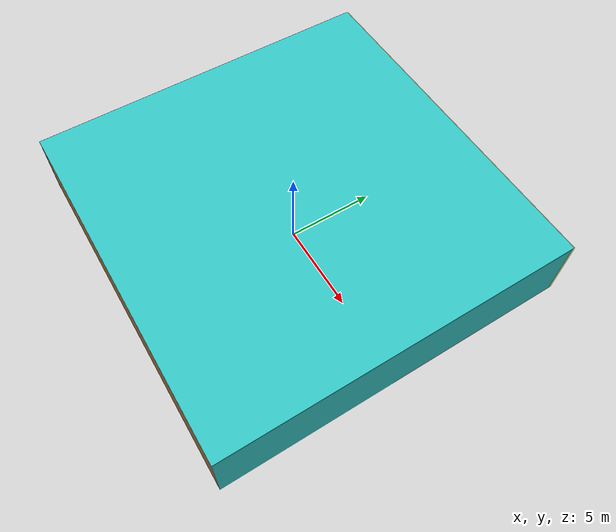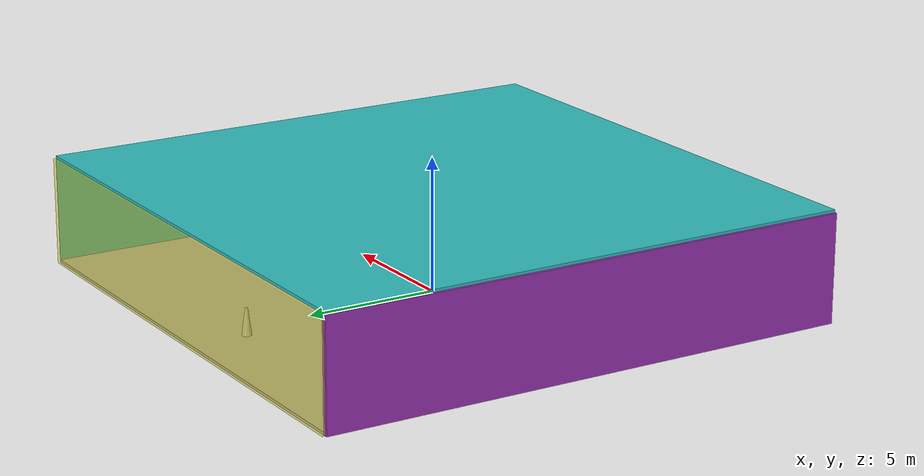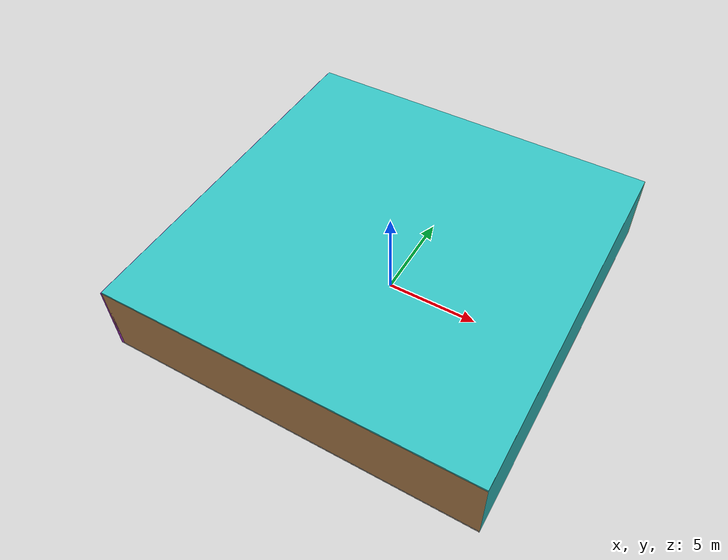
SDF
<sdf version="1.4">
 <world name="default">
  <physics type="ode">
   <max_step_size>0.001</max_step_size>
   <real_time_factor>1</real_time_factor>
   <real_time_update_rate>1000</real_time_update_rate>
   <gravity>0 0 -9.8</gravity>
  </physics>
  <scene><ambient>0.4 0.4 0.4 1</ambient><background>0.7 0.7 0.7 1</background><shadows>1</shadows></scene>
  <model name="Surrounding">
   <static>1</static>
   <link name="Ceiling">
    <collision name="Ceiling_Collision"><geometry><box><size>20 20 0.1</size></box></geometry></collision>
    <visual name="Ceiling_Visual">
     <geometry><box><size>20 20 0.1</size></box></geometry>
     <material>
      <script>
       <uri>file://media/materials/scripts/gazebo.material</uri>
       <name>Gazebo/TurquoiseGlowOutline</name>
      </script>
     </material>
    </visual>
    <pose>0 0 4.05 0 0 0</pose>
   </link>
   <link name="Wall_South">
    <collision name="Wall_South_Collision">
     <geometry><box><size>20 0 4</size></box></geometry>
     <pose>0 0 2 0 -0 0</pose>
    </collision>
    <visual name="Wall_South_Visual">
     <pose>0 0 2 0 -0 0</pose>
     <geometry><box><size>20 0 4</size></box></geometry>
     <material>
      <script><uri>file://media/materials/scripts/gazebo.material</uri><name>Gazebo/WoodFloor</name></script>
     </material>
    </visual>
    <velocity_decay><linear>0</linear><angular>0</angular></velocity_decay>
    <pose>0 -10 0 0 -0 0</pose>
   </link>
   <link name="Wall_East">
    <collision name="Wall_21_Collision">
     <geometry><box><size>20 0 4</size></box></geometry>
     <pose>0 0 2 0 -0 0</pose>
    </collision>
    <visual name="Wall_21_Visual">
     <pose>0 0 2 0 -0 0</pose>
     <geometry><box><size>20 0 4</size></box></geometry>
     <material>
      <script><uri>file://media/materials/scripts/gazebo.material</uri><name>Gazebo/TurquoiseGlow</name></script>
     </material>
    </visual>
    <velocity_decay><linear>0</linear><angular>0</angular></velocity_decay>
    <pose>10 0 0 0 -0 1.5708</pose>
   </link>
   <link name="Wall_North">
    <collision name="Wall_22_Collision">
     <geometry><box><size>20 0.2 4</size></box></geometry>
     <pose>0 0 2 0 -0 0</pose>
    </collision>
    <visual name="Wall_22_Visual">
     <pose>0 0 2 0 -0 0</pose>
     <geometry><box><size>20 0.2 4</size></box></geometry>
     <material>
      <script>
       <uri>file://media/materials/scripts/gazebo.material</uri>
       <name>Gazebo/YellowTransparent</name>
      </script>
     </material>
    </visual>
    <velocity_decay><linear>0</linear><angular>0</angular></velocity_decay>
    <pose>0 10 0 0 -0 0</pose>
   </link>
   <link name="Wall_West">
    <collision name="Wall_23_Collision">
     <geometry><box><size>20 0.2 4</size></box></geometry>
     <pose>0 0 2 0 -0 0</pose>
    </collision>
    <visual name="Wall_23_Visual">
     <pose>0 0 2 0 -0 0</pose>
     <geometry><box><size>20 0.2 4</size></box></geometry>
     <material>
      <script><uri>file://media/materials/scripts/gazebo.material</uri><name>Gazebo/Purple</name></script>
     </material>
    </visual>
    <velocity_decay><linear>0</linear><angular>0</angular></velocity_decay>
    <pose>-10 0 0 0 0 -1.5708</pose>
   </link>
   <link name="Ground_link">
    <collision name="collision">
     <pose>0 0 .05 0 -0 0</pose>
     <geometry><box><size>20 20 0.1</size></box></geometry>
    </collision>
    <visual name="visual">
     <pose>0 0 .05 0 -0 0</pose>
     <geometry><box><size>20 20 0.1</size></box></geometry>
     <material>
      <script><uri>file://media/materials/scripts/gazebo.material</uri><name>Gazebo/PioneerBody</name></script>
     </material>
    </visual>
   </link>
   <static>1</static>
  </model>
  <spherical_coordinates>
   <surface_model>EARTH_WGS84</surface_model>
   <latitude_deg>0</latitude_deg>
   <longitude_deg>0</longitude_deg>
   <elevation>0</elevation>
   <heading_deg>0</heading_deg>
  </spherical_coordinates>
  <light name="lightball_0" type="diffuse">
   <diffuse>0.8 0.8 0.8 1</diffuse>
   <specular>0.2 0.2 0.2 1</specular>
   <attenuation>
    <range>100</range>
    <constant>0.7</constant>
    <linear>0.01</linear>
    <quadratic>0.001</quadratic>
   </attenuation>
   <direction>-0.5 0.1 -0.9</direction>
   <pose>-9.05881492347 -8.18160349464 0.636091749661 0 0 0</pose>
  </light>
  <light name="lightball_1" type="diffuse">
   <diffuse>0.8 0.8 0.8 1</diffuse>
   <specular>0.2 0.2 0.2 1</specular>
   <attenuation>
    <range>100</range>
    <constant>0.7</constant>
    <linear>0.01</linear>
    <quadratic>0.001</quadratic>
   </attenuation>
   <direction>-0.5 0.1 -0.9</direction>
   <pose>-9.91729632341 2.35513297046 3.16585191402 0 0 0</pose>
  </light>
  <light name="lightball_2" type="diffuse">
   <diffuse>0.8 0.8 0.8 1</diffuse>
   <specular>0.2 0.2 0.2 1</specular>
   <attenuation>
    <range>100</range>
    <constant>0.7</constant>
    <linear>0.01</linear>
    <quadratic>0.001</quadratic>
   </attenuation>
   <direction>-0.5 0.1 -0.9</direction>
   <pose>1.52831943602 7.0408765313 1.28652013198 0 0 0</pose>
  </light>
  <light name="lightball_3" type="diffuse">
   <diffuse>0.8 0.8 0.8 1</diffuse>
   <specular>0.2 0.2 0.2 1</specular>
   <attenuation>
    <range>100</range>
    <constant>0.7</constant>
    <linear>0.01</linear>
    <quadratic>0.001</quadratic>
   </attenuation>
   <direction>-0.5 0.1 -0.9</direction>
   <pose>1.14160379332 7.98214940199 1.38363422905 0 0 0</pose>
  </light>
  <light name="lightball_4" type="diffuse">
   <diffuse>0.8 0.8 0.8 1</diffuse>
   <specular>0.2 0.2 0.2 1</specular>
   <attenuation>
    <range>100</range>
    <constant>0.7</constant>
    <linear>0.01</linear>
    <quadratic>0.001</quadratic>
   </attenuation>
   <direction>-0.5 0.1 -0.9</direction>
   <pose>-7.7204958384 -5.8674167461 1.32646378007 0 0 0</pose>
  </light>
  <light name="lightball_5" type="diffuse">
   <diffuse>0.8 0.8 0.8 1</diffuse>
   <specular>0.2 0.2 0.2 1</specular>
   <attenuation>
    <range>100</range>
    <constant>0.7</constant>
    <linear>0.01</linear>
    <quadratic>0.001</quadratic>
   </attenuation>
   <direction>-0.5 0.1 -0.9</direction>
   <pose>-1.23926150592 -8.61687249957 2.90832108305 0 0 0</pose>
  </light>
  <include>
   <uri>model://robocup_3Dsim_goal</uri>
   <pose>-6.78314692062 1.20811371808 0 0 0 0.896346301216</pose>
  </include>
  <include><uri>model://table</uri><pose>-7.858855205 3.377362425 0 0 0 2.77901527011</pose></include>
  <include><uri>model://cabinet</uri><pose>-5.33816189455 -8.43942543365 0 0 0 2.33155941415</pose></include>
  <include>
   <uri>model://construction_cone</uri>
   <pose>-0.839332279083 7.92191866011 0 0 0 0.579961434199</pose>
  </include>
  <include><uri>model://table</uri><pose>8.21476698427 -4.50110490961 0 0 0 2.25707799753</pose></include>
 </world>
</sdf>

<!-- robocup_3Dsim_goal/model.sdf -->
<sdf version="1.5">
  <model name="robocup_3d_goal">
    <static>true</static>
    <link name="left_post">
      <pose>0 1.05 0.45 0 0 0</pose>
      <collision name="collision">
        <geometry>
          <cylinder>
            <radius>0.05</radius>
            <length>0.9</length>
          </cylinder>
        </geometry>
      </collision>
      <visual name="visual">
        <geometry>
          <cylinder>
            <radius>0.05</radius>
            <length>0.9</length>
          </cylinder>
        </geometry>
        <material>
          <script>
            <uri>file://media/materials/scripts/gazebo.material</uri>
            <name>Gazebo/ZincYellow</name>
          </script>
        </material>
      </visual>
    </link>
    <link name="left_support_horiz_lower">
      <pose>0.30 1.05 0.01 0 0 0</pose>
      <collision name="collision">
        <geometry>
          <box>
            <size>0.50 0.02 0.02</size>
          </box>
        </geometry>
      </collision>
      <visual name="visual">
        <geometry>
          <box>
            <size>0.50 0.02 0.02</size>
          </box>
        </geometry>
        <material>
          <script>
            <uri>file://media/materials/scripts/gazebo.material</uri>
            <name>Gazebo/White</name>
          </script>
        </material>
      </visual>
    </link>
    <link name="left_support_horiz_upper">
      <pose>0.30 1.05 0.79 0 0 0</pose>
      <collision name="collision">
        <geometry>
          <box>
            <size>0.50 0.02 0.02</size>
          </box>
        </geometry>
      </collision>
      <visual name="visual">
        <geometry>
          <box>
            <size>0.50 0.02 0.02</size>
          </box>
        </geometry>
        <material>
          <script>
            <uri>file://media/materials/scripts/gazebo.material</uri>
            <name>Gazebo/White</name>
          </script>
        </material>
      </visual>
    </link>
    <link name="left_support_vertical">
      <pose>0.56 1.05 0.4 0 1.5708 0</pose>
      <collision name="collision">
        <geometry>
          <box>
            <size>0.80 0.02 0.02</size>
          </box>
        </geometry>
      </collision>
      <visual name="visual">
        <geometry>
          <box>
            <size>0.80 0.02 0.02</size>
          </box>
        </geometry>
        <material>
          <script>
            <uri>file://media/materials/scripts/gazebo.material</uri>
            <name>Gazebo/White</name>
          </script>
        </material>
      </visual>
    </link>
    <link name="right_support_horiz_lower">
      <pose>0.30 -1.05 0.01 0 0 0</pose>
      <collision name="collision">
        <geometry>
          <box>
            <size>0.50 0.02 0.02</size>
          </box>
        </geometry>
      </collision>
      <visual name="visual">
        <geometry>
          <box>
            <size>0.50 0.02 0.02</size>
          </box>
        </geometry>
        <material>
          <script>
            <uri>file://media/materials/scripts/gazebo.material</uri>
            <name>Gazebo/White</name>
          </script>
        </material>
      </visual>
    </link>
    <link name="right_support_horiz_upper">
      <pose>0.30 -1.05 0.79 0 0 0</pose>
      <collision name="collision">
        <geometry>
          <box>
            <size>0.50 0.02 0.02</size>
          </box>
        </geometry>
      </collision>
      <visual name="visual">
        <geometry>
          <box>
            <size>0.50 0.02 0.02</size>
          </box>
        </geometry>
        <material>
          <script>
            <uri>file://media/materials/scripts/gazebo.material</uri>
            <name>Gazebo/White</name>
          </script>
        </material>
      </visual>
    </link>
    <link name="right_support_vertical">
      <pose>0.56 -1.05 0.4 0 1.5708 0</pose>
      <collision name="collision">
        <geometry>
          <box>
            <size>0.80 0.02 0.02</size>
          </box>
        </geometry>
      </collision>
      <visual name="visual">
        <geometry>
          <box>
            <size>0.80 0.02 0.02</size>
          </box>
        </geometry>
        <material>
          <script>
            <uri>file://media/materials/scripts/gazebo.material</uri>
            <name>Gazebo/White</name>
          </script>
        </material>
      </visual>
    </link>
    <link name="center_support_horiz_lower">
      <pose>0.56 0 0.01 0 1.5708 0</pose>
      <collision name="collision">
        <geometry>
          <box>
            <size>0.02 2.08 0.02</size>
          </box>
        </geometry>
      </collision>
      <visual name="visual">
        <geometry>
          <box>
            <size>0.02 2.08 0.02</size>
          </box>
        </geometry>
        <material>
          <script>
            <uri>file://media/materials/scripts/gazebo.material</uri>
            <name>Gazebo/White</name>
          </script>
        </material>
      </visual>
    </link>
    <link name="center_support_horiz_upper">
      <pose>0.56 0 0.79 0 1.5708 0</pose>
      <collision name="collision">
        <geometry>
          <box>
            <size>0.02 2.08 0.02</size>
          </box>
        </geometry>
      </collision>
      <visual name="visual">
        <geometry>
          <box>
            <size>0.02 2.08 0.02</size>
          </box>
        </geometry>
        <material>
          <script>
            <uri>file://media/materials/scripts/gazebo.material</uri>
            <name>Gazebo/White</name>
          </script>
        </material>
      </visual>
    </link>
    <link name="right_post">
      <pose>0 -1.05 0.45 0 0 0</pose>
      <collision name="collision">
        <geometry>
          <cylinder>
            <radius>0.05</radius>
            <length>0.9</length>
          </cylinder>
        </geometry>
      </collision>
      <visual name="visual">
        <geometry>
          <cylinder>
            <radius>0.05</radius>
            <length>0.9</length>
          </cylinder>
        </geometry>
        <material>
          <script>
            <uri>file://media/materials/scripts/gazebo.material</uri>
            <name>Gazebo/ZincYellow</name>
          </script>
        </material>
      </visual>
    </link>
    <link name="crossbar">
      <pose>0 0 0.85 1.57 1.57 0</pose>
      <collision name="collision">
        <geometry>
          <cylinder>
            <radius>0.05</radius>
            <length>2.0</length>
          </cylinder>
        </geometry>
      </collision>
      <visual name="visual">
        <geometry>
          <cylinder>
            <radius>0.05</radius>
            <length>2.0</length>
          </cylinder>
        </geometry>
        <material>
          <script>
            <uri>file://media/materials/scripts/gazebo.material</uri>
            <name>Gazebo/ZincYellow</name>
          </script>
        </material>
      </visual>
    </link>
    <link name="center_net">
      <pose>0.56 0 0.40 0 0 0</pose>
      <collision name="collision">
        <geometry>
          <box>
            <size>0.01 2.1 0.80</size>
          </box>
        </geometry>
      </collision>
      <visual name="visual">
        <geometry>
          <box>
            <size>0.01 2.1 0.80</size>
          </box>
        </geometry>
        <material>
          <script>
            <uri>model://../model_source/models/robocup09_spl_field/materials/scripts/</uri>
            <uri>model://../model_source/models/robocup09_spl_field/materials/textures/</uri>
            <name>RoboCup/Net</name>
          </script>
        </material>
      </visual>
    </link>
    <link name="left_net">
      <pose>0.30 1.05 0.40 0 0 0</pose>
      <collision name="collision">
        <geometry>
          <box>
            <size>0.50 0.01 0.76</size>
          </box>
        </geometry>
      </collision>
      <visual name="visual">
        <geometry>
          <box>
            <size>0.50 0.01 0.76</size>
          </box>
        </geometry>
        <material>
          <script>
            <uri>model://../model_source/models/robocup09_spl_field/materials/scripts/</uri>
            <uri>model://../model_source/models/robocup09_spl_field/materials/textures/</uri>
            <name>RoboCup/Net</name>
          </script>
        </material>
      </visual>
    </link>
    <link name="right_net">
      <pose>0.30 -1.05 0.40 0 0 0</pose>
      <collision name="collision">
        <geometry>
          <box>
            <size>0.50 0.01 0.76</size>
          </box>
        </geometry>
      </collision>
      <visual name="visual">
        <geometry>
          <box>
            <size>0.50 0.01 0.76</size>
          </box>
        </geometry>
        <material>
          <script>
            <uri>model://../model_source/models/robocup09_spl_field/materials/scripts/</uri>
            <uri>model://../model_source/models/robocup09_spl_field/materials/textures/</uri>
            <name>RoboCup/Net</name>
          </script>
        </material>
      </visual>
    </link>
  </model>
</sdf>

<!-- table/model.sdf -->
<sdf version="1.5">
  <model name="table">
    <static>true</static>
    <link name="link">
      <collision name="surface">
        <pose>0 0 1.0 0 0 0</pose>
        <geometry>
          <box>
            <size>1.5 0.8 0.03</size>
          </box>
        </geometry>
        <surface>
          <friction>
            <ode>
              <mu>0.6</mu>
              <mu2>0.6</mu2>
            </ode>
          </friction>
        </surface>
      </collision>
      <visual name="visual1">
        <pose>0 0 1.0 0 0 0</pose>
        <geometry>
          <box>
            <size>1.5 0.8 0.03</size>
          </box>
        </geometry>
        <material>
          <script>
            <uri>model://media/materials/scripts/gazebo.material</uri>
            <name>Gazebo/Wood</name>
          </script>
        </material>
      </visual>
      <collision name="front_left_leg">
        <pose>0.68 0.38 0.5 0 0 0</pose>
        <geometry>
          <cylinder>
            <radius>0.02</radius>
            <length>1.0</length>
          </cylinder>
        </geometry>
      </collision>
      <visual name="front_left_leg">
        <pose>0.68 0.38 0.5 0 0 0</pose>
        <geometry>
          <cylinder>
            <radius>0.02</radius>
            <length>1.0</length>
          </cylinder>
        </geometry>
        <material>
          <script>
            <uri>model://media/materials/scripts/gazebo.material</uri>
            <name>Gazebo/Grey</name>
          </script>
        </material>
      </visual>
      <collision name="front_right_leg">
        <pose>0.68 -0.38 0.5 0 0 0</pose>
        <geometry>
          <cylinder>
            <radius>0.02</radius>
            <length>1.0</length>
          </cylinder>
        </geometry>
      </collision>
      <visual name="front_right_leg">
        <pose>0.68 -0.38 0.5 0 0 0</pose>
        <geometry>
          <cylinder>
            <radius>0.02</radius>
            <length>1.0</length>
          </cylinder>
        </geometry>
        <material>
          <script>
            <uri>model://media/materials/scripts/gazebo.material</uri>
            <name>Gazebo/Grey</name>
          </script>
        </material>
      </visual>
      <collision name="back_right_leg">
        <pose>-0.68 -0.38 0.5 0 0 0</pose>
        <geometry>
          <cylinder>
            <radius>0.02</radius>
            <length>1.0</length>
          </cylinder>
        </geometry>
      </collision>
      <visual name="back_right_leg">
        <pose>-0.68 -0.38 0.5 0 0 0</pose>
        <geometry>
          <cylinder>
            <radius>0.02</radius>
            <length>1.0</length>
          </cylinder>
        </geometry>
        <material>
          <script>
            <uri>model://media/materials/scripts/gazebo.material</uri>
            <name>Gazebo/Grey</name>
          </script>
        </material>
      </visual>
      <collision name="back_left_leg">
        <pose>-0.68 0.38 0.5 0 0 0</pose>
        <geometry>
          <cylinder>
            <radius>0.02</radius>
            <length>1.0</length>
          </cylinder>
        </geometry>
      </collision>
      <visual name="back_left_leg">
        <pose>-0.68 0.38 0.5 0 0 0</pose>
        <geometry>
          <cylinder>
            <radius>0.02</radius>
            <length>1.0</length>
          </cylinder>
        </geometry>
        <material>
          <script>
            <uri>model://media/materials/scripts/gazebo.material</uri>
            <name>Gazebo/Grey</name>
          </script>
        </material>
      </visual>
    </link>
  </model>
</sdf>

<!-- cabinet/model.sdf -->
<sdf version="1.5">
  <model name="cabinet">
    <static>true</static>
    <link name="cabinet_bottom_plate">
      <inertial>
        <pose>0 0 -1 0 0 0</pose>
        <inertia>
          <ixx>2.050000</ixx>
          <ixy>0</ixy>
          <ixz>0</ixz>
          <iyy>2.050000</iyy>
          <iyz>0</iyz>
          <izz>2.050000</izz>
        </inertia>
        <mass>25.000000</mass>
      </inertial>
      <collision name="cabinet_bottom_plate_geom">
        <pose>0 0 0.010000 0 0 0</pose>
        <geometry>
          <box>
            <size>0.450000 0.450000 0.020000</size>
          </box>
        </geometry>
      </collision>
      <visual name="cabinet_bottom_plate_geom_visual">
        <pose>0 0 0.010000 0 0 0</pose>
        <geometry>
          <box>
            <size>0.450000 0.450000 0.020000</size>
          </box>
        </geometry>
        <material>
          <script>
            <uri>model://media/materials/scripts/gazebo.material</uri>
            <name>Gazebo/Wood</name>
          </script>
        </material>
      </visual>
      <collision name="cabinet_bottom_plate_geom_cabinet_back_plate">
        <pose>0.235000 0 0.510000 0 0 0</pose>
        <geometry>
          <box>
            <size>0.020000 0.450000 1.020000</size>
          </box>
        </geometry>
      </collision>
      <visual name="cabinet_bottom_plate_geom_cabinet_back_plate_visual">
        <pose>0.235000 0 0.510000 0 0 0</pose>
        <geometry>
          <box>
            <size>0.020000 0.450000 1.020000</size>
          </box>
        </geometry>
        <material>
          <script>
            <uri>model://media/materials/scripts/gazebo.material</uri>
            <name>Gazebo/Wood</name>
          </script>
        </material>
      </visual>
      <collision name="cabinet_bottom_plate_geom_cabinet_left_plate">
        <pose>0 0.235000 0.510000 0 0 0</pose>
        <geometry>
          <box>
            <size>0.450000 0.020000 1.020000</size>
          </box>
        </geometry>
      </collision>
      <visual name="cabinet_bottom_plate_geom_cabinet_left_plate_visual">
        <pose>0 0.235000 0.510000 0 0 0</pose>
        <geometry>
          <box>
            <size>0.450000 0.020000 1.020000</size>
          </box>
        </geometry>
        <material>
          <script>
            <uri>model://media/materials/scripts/gazebo.material</uri>
            <name>Gazebo/Wood</name>
          </script>
        </material>
      </visual>
      <collision name="cabinet_bottom_plate_geom_cabinet_middle_plate">
        <pose>0 0 0.510000 0 0 0</pose>
        <geometry>
          <box>
            <size>0.450000 0.450000 0.020000</size>
          </box>
        </geometry>
      </collision>
      <visual name="cabinet_bottom_plate_geom_cabinet_middle_plate_visual">
        <pose>0 0 0.510000 0 0 0</pose>
        <geometry>
          <box>
            <size>0.450000 0.450000 0.020000</size>
          </box>
        </geometry>
        <material>
          <script>
            <uri>model://media/materials/scripts/gazebo.material</uri>
            <name>Gazebo/Wood</name>
          </script>
        </material>
      </visual>
      <collision name="cabinet_bottom_plate_geom_cabinet_right_plate">
        <pose>0 -0.235000 0.510000 0 0 0</pose>
        <geometry>
          <box>
            <size>0.450000 0.020000 1.020000</size>
          </box>
        </geometry>
      </collision>
      <visual name="cabinet_bottom_plate_geom_cabinet_right_plate_visual">
        <pose>0 -0.235000 0.510000 0 0 0</pose>
        <geometry>
          <box>
            <size>0.450000 0.020000 1.020000</size>
          </box>
        </geometry>
        <material>
          <script>
            <uri>model://media/materials/scripts/gazebo.material</uri>
            <name>Gazebo/Wood</name>
          </script>
        </material>
      </visual>
      <collision name="cabinet_bottom_plate_geom_cabinet_top_plate">
        <pose>0 0 1.010000 0 0 0</pose>
        <geometry>
          <box>
            <size>0.450000 0.450000 0.020000</size>
          </box>
        </geometry>
      </collision>
      <visual name="cabinet_bottom_plate_geom_cabinet_top_plate_visual">
        <pose>0 0 1.010000 0 0 0</pose>
        <geometry>
          <box>
            <size>0.450000 0.450000 0.020000</size>
          </box>
        </geometry>
        <material>
          <script>
            <uri>model://media/materials/scripts/gazebo.material</uri>
            <name>Gazebo/Wood</name>
          </script>
        </material>
      </visual>
    </link>
  </model>
</sdf>

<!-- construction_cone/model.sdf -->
<sdf version="1.5">
  <model name="Construction Cone">
    <link name="link">
      <collision name="collision">
        <geometry>
          <mesh>
            <scale>10 10 10</scale>
            <uri>file://isr-testbed/construction_cone/meshes/construction_cone.dae</uri>
          </mesh>
        </geometry>
      </collision>
      <visual name="visual">
        <geometry>
          <mesh>
            <scale>10 10 10</scale>
            <uri>file://isr-testbed/construction_cone/meshes/construction_cone.dae</uri>
          </mesh>
        </geometry>
      </visual>
    </link>
  </model>
</sdf>
